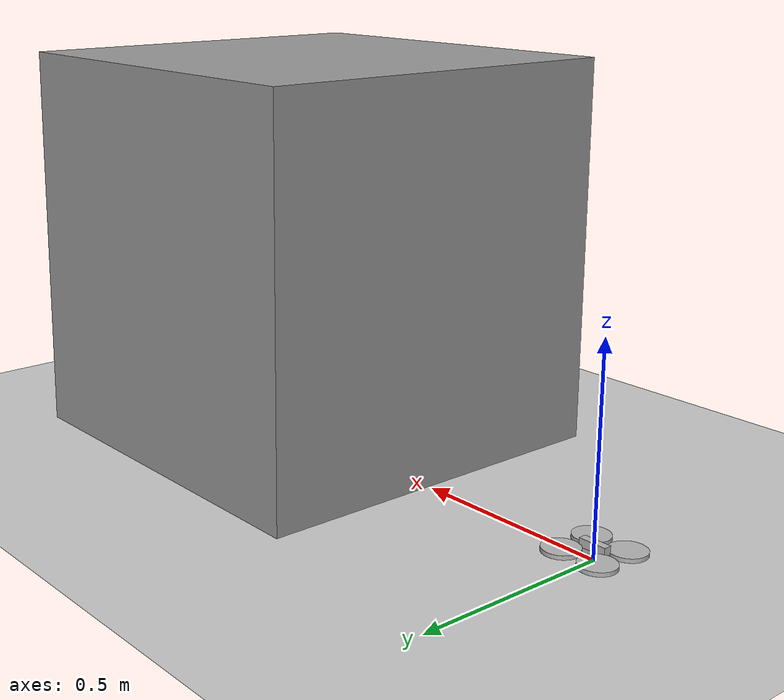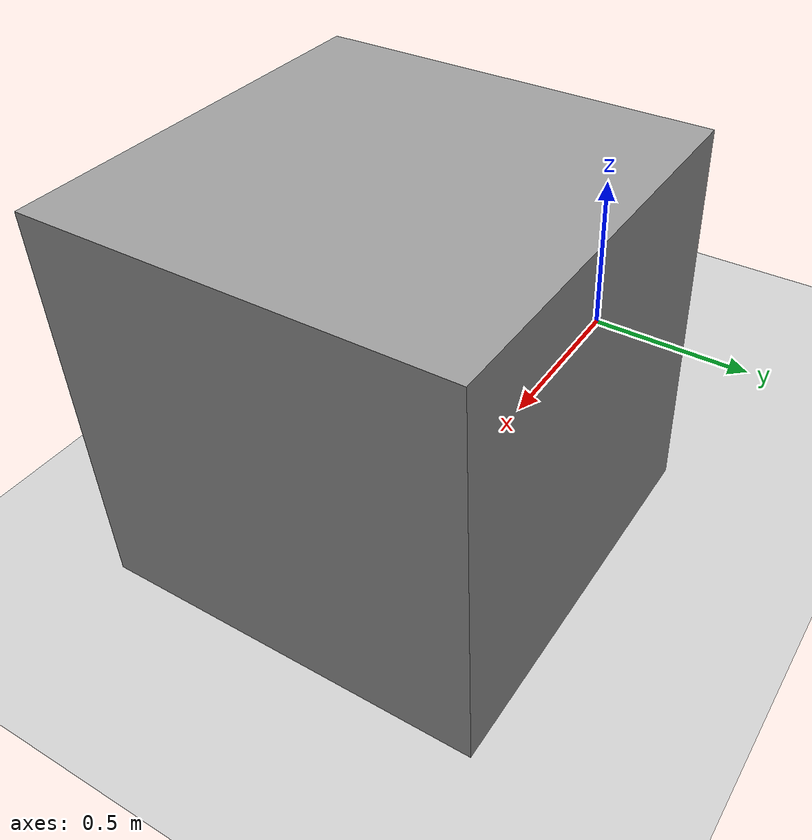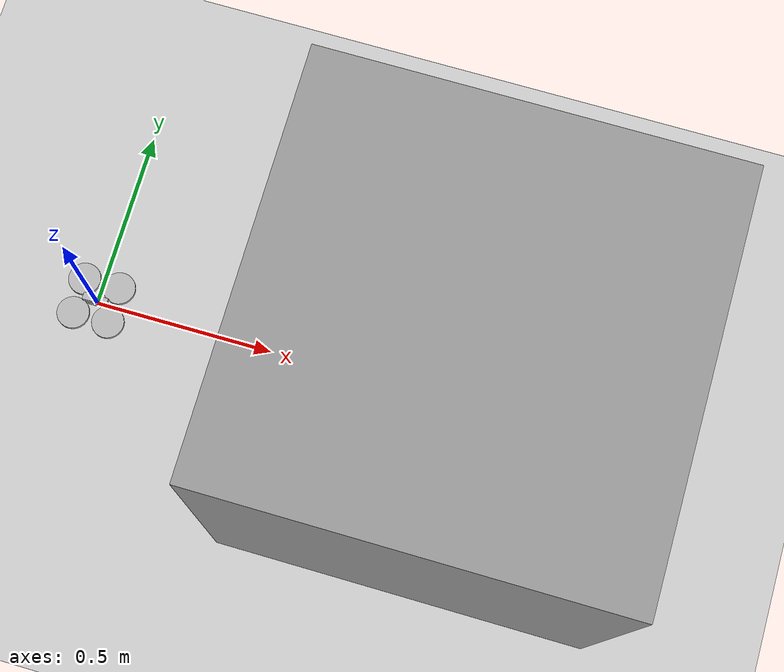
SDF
<sdf version="1.7">
 <world name="default">
  <physics name="normal" type="ode">
   <real_time_update_rate>1000</real_time_update_rate>
   <max_step_size>0.001</max_step_size>
   <real_time_factor>1</real_time_factor>
  </physics>
  <model name="ground_plane">
   <static>1</static>
   <link name="link">
    <collision name="collision">
     <geometry><plane><normal>0 0 1</normal><size>100 100</size></plane></geometry>
     <surface>
      <contact><collide_bitmask>65535</collide_bitmask></contact>
      <friction><ode><mu>100</mu><mu2>50</mu2></ode></friction>
     </surface>
    </collision>
    <visual name="visual">
     <cast_shadows>0</cast_shadows>
     <geometry><plane><normal>0 0 1</normal><size>100 100</size></plane></geometry>
     <material>
      <script><uri>file://media/materials/scripts/gazebo.material</uri><name>Gazebo/Grey</name></script>
     </material>
    </visual>
   </link>
  </model>
  <light name="sun" type="directional">
   <pose>0 0 10 0 -0 0</pose>
   <diffuse>0.8 0.8 0.8 1</diffuse>
   <specular>0.2 0.2 0.2 1</specular>
   <attenuation>
    <range>1000</range>
    <constant>0.9</constant>
    <linear>0.01</linear>
    <quadratic>0.001</quadratic>
   </attenuation>
   <direction>-0.5 0.1 -0.9</direction>
   <spot><inner_angle>0</inner_angle><outer_angle>0</outer_angle><falloff>0</falloff></spot>
  </light>
  <plugin name="gazebo_ros_state" filename="libgazebo_ros_state.so">
   <ros><namespace>/gazebo</namespace></ros>
  </plugin>
  <model name="unit_box">
   <pose>1.0138 -0.03931 0.499995 1e-05 -0 0</pose>
   <link name="link">
    <inertial>
     <mass>1</mass>
     <inertia>
      <ixx>0.166667</ixx>
      <ixy>0</ixy>
      <ixz>0</ixz>
      <iyy>0.166667</iyy>
      <iyz>0</iyz>
      <izz>0.166667</izz>
     </inertia>
    </inertial>
    <collision name="collision"><geometry><box><size>1 1 1</size></box></geometry></collision>
    <visual name="visual">
     <geometry><box><size>1 1 1</size></box></geometry>
     <material>
      <script><name>Gazebo/Grey</name><uri>file://media/materials/scripts/gazebo.material</uri></script>
     </material>
    </visual>
   </link>
  </model>
  <gravity>0 0 -9.8</gravity>
  <magnetic_field>6e-06 2.3e-05 -4.2e-05</magnetic_field>
  <atmosphere type="adiabatic"/>
  <scene><ambient>0.4 0.4 0.4 1</ambient><background>0.7 0.7 0.7 1</background><shadows>1</shadows></scene>
  <spherical_coordinates>
   <surface_model>EARTH_WGS84</surface_model>
   <latitude_deg>0</latitude_deg>
   <longitude_deg>0</longitude_deg>
   <elevation>0</elevation>
   <heading_deg>0</heading_deg>
  </spherical_coordinates>
  <model name="tello_1">
   <link name="base_link_1">
    <inertial>
     <pose>3e-06 0 0 0 -0 0</pose>
     <mass>0.10001</mass>
     <inertia>
      <ixx>0.000291833</ixx>
      <ixy>0</ixy>
      <ixz>0</ixz>
      <iyy>0.000541012</iyy>
      <iyz>0</iyz>
      <izz>0.000291845</izz>
     </inertia>
    </inertial>
    <collision name="base_link_1_fixed_joint_lump__collision_collision">
     <geometry><box><size>0.18 0.18 0.05</size></box></geometry>
    </collision>
    <collision name="base_link_1_fixed_joint_lump__camera_link_1_collision_1">
     <pose>0.035 0 0 0 -0 0</pose>
     <geometry><sphere><radius>0.01</radius></sphere></geometry>
    </collision>
    <visual name="base_link_1_visual">
     <pose>0 0 0.01 0 -0 0</pose>
     <geometry><box><size>0.07 0.02 0.02</size></box></geometry>
    </visual>
    <visual name="base_link_1_visual_1">
     <pose>0 0 -0.01 0 -0 0</pose>
     <geometry><box><size>0.07 0.02 0.02</size></box></geometry>
    </visual>
    <visual name="base_link_1_visual_2">
     <pose>0.05 -0.05 0 0 -0 0</pose>
     <geometry><cylinder><length>0.01</length><radius>0.045</radius></cylinder></geometry>
    </visual>
    <visual name="base_link_1_visual_3">
     <pose>-0.05 0.05 0 0 -0 0</pose>
     <geometry><cylinder><length>0.01</length><radius>0.045</radius></cylinder></geometry>
    </visual>
    <visual name="base_link_1_visual_4">
     <pose>-0.05 -0.05 0 0 -0 0</pose>
     <geometry><cylinder><length>0.01</length><radius>0.045</radius></cylinder></geometry>
    </visual>
    <visual name="base_link_1_visual_5">
     <pose>0.05 0.05 0 0 -0 0</pose>
     <geometry><cylinder><length>0.01</length><radius>0.045</radius></cylinder></geometry>
    </visual>
    <visual name="base_link_1_fixed_joint_lump__camera_link_1_visual_6">
     <pose>0.035 0 0 0 -0 0</pose>
     <geometry><sphere><radius>0.01</radius></sphere></geometry>
    </visual>
    <sensor name="drone1" type="camera">
     <update_rate>30</update_rate>
     <camera name="head">
      <horizontal_fov>0.96</horizontal_fov>
      <image><width>960</width><height>720</height><format>R8G8B8</format></image>
      <clip><near>0.1</near><far>300</far></clip>
      <noise><type>gaussian</type><mean>0</mean><stddev>0.007</stddev></noise>
     </camera>
     <plugin name="camera_controller_1" filename="libgazebo_ros_camera.so">
      <alwaysOn>1</alwaysOn>
      <updateRate>0.0</updateRate>
      <cameraName>this_is_ignored</cameraName>
      <imageTopicName>image_raw</imageTopicName>
      <cameraInfoTopicName>camera_info</cameraInfoTopicName>
      <frameName>camera_link_1</frameName>
      <hackBaseline>0.07</hackBaseline>
      <distortionK1>0.0</distortionK1>
      <distortionK2>0.0</distortionK2>
      <distortionK3>0.0</distortionK3>
      <distortionT1>0.0</distortionT1>
      <distortionT2>0.0</distortionT2>
     </plugin>
     <pose>0.035 0 0 0 -0 0</pose>
    </sensor>
   </link>
   <plugin name="TelloPlugin" filename="libTelloPlugin.so">
    <namespace>drone1</namespace>
    <parameter name="use_sim_time" type="bool">1</parameter>
    <link_name>base_link_1</link_name>
    <center_of_mass>0 0 0</center_of_mass>
   </plugin>
   <frame name="camera_joint_1" attached_to="base_link_1"><pose>0.035 0 0 0 -0 0</pose></frame>
   <frame name="camera_link_1" attached_to="camera_joint_1"/>
   <pose>0 0 0.025 -0 -0 -0</pose>
  </model>
 </world>
</sdf>
